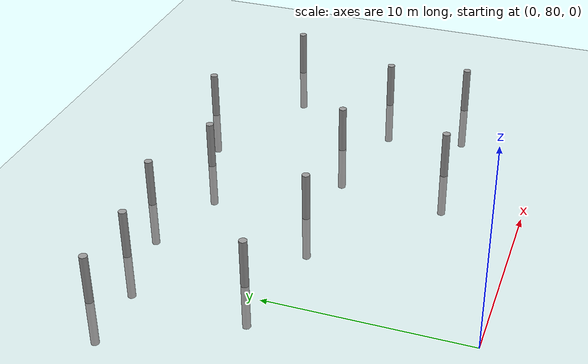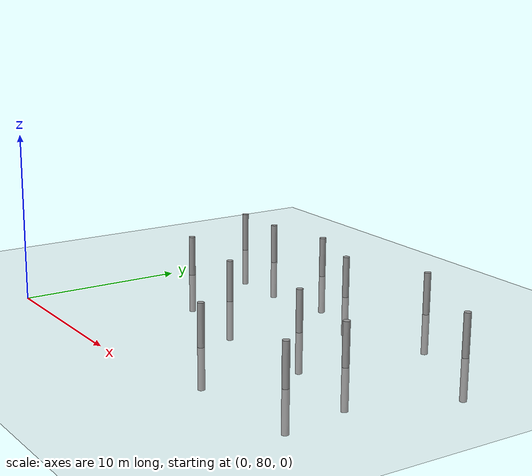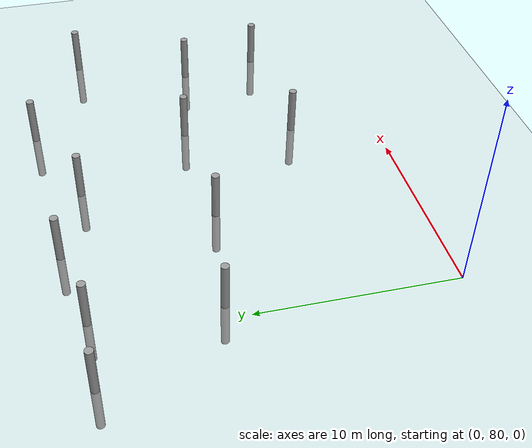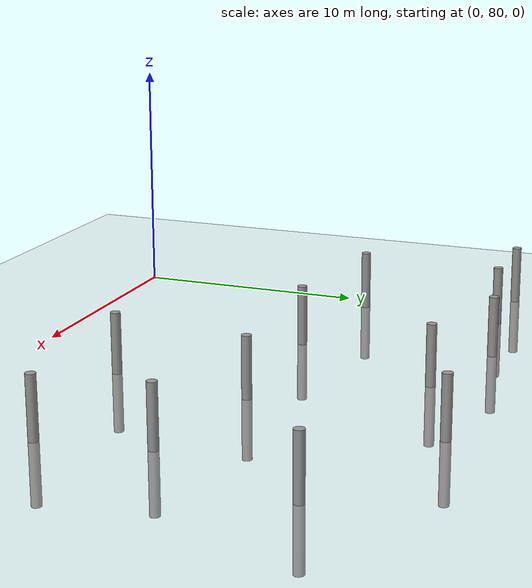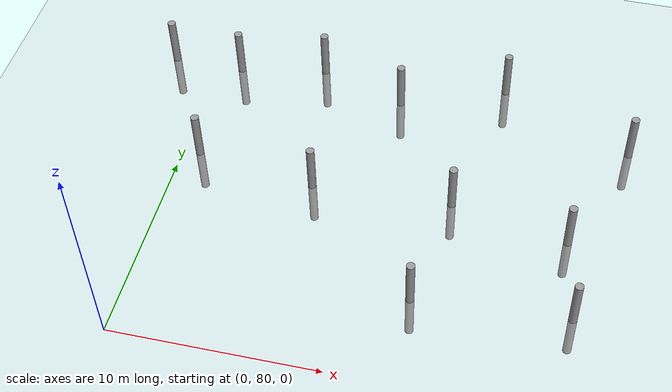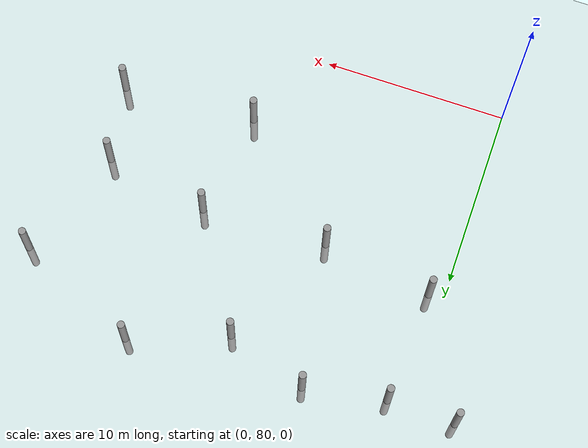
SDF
<sdf version="1.6">
 <world name="default">
  <model name="ground_plane">
   <static>1</static>
   <link name="link">
    <collision name="collision">
     <geometry><plane><normal>0 0 1</normal><size>100 100</size></plane></geometry>
     <surface><friction><ode><mu>100</mu><mu2>50</mu2></ode></friction></surface>
    </collision>
    <visual name="visual">
     <cast_shadows>0</cast_shadows>
     <geometry><plane><normal>0 0 1</normal><size>100 100</size></plane></geometry>
     <material>
      <script><uri>file://media/materials/scripts/gazebo.material</uri><name>Gazebo/Grey</name></script>
     </material>
    </visual>
   </link>
  </model>
  <model name="empty_pillars_0">
   <model name="empty_pillar_clone_30">
    <link name="link">
     <inertial>
      <mass>1</mass>
      <inertia><ixx>0.145833</ixx><ixy>0</ixy><ixz>0</ixz><iyy>0.145833</iyy><iyz>0</iyz><izz>0.125</izz></inertia>
     </inertial>
     <visual name="visual">
      <geometry><cylinder><radius>0.2</radius><length>5</length></cylinder></geometry>
      <material>
       <script><name>Gazebo/Grey</name><uri>file://media/materials/scripts/gazebo.material</uri></script>
       <shader type="vertex"><normal_map>__default__</normal_map></shader>
       <ambient>0.3 0.3 0.3 1</ambient>
       <diffuse>0.7 0.7 0.7 1</diffuse>
       <specular>0.01 0.01 0.01 1</specular>
       <emissive>0 0 0 1</emissive>
      </material>
     </visual>
     <collision name="collision">
      <geometry><cylinder><radius>0.05</radius><length>5</length></cylinder></geometry>
      <surface>
       <friction>
        <ode><mu>1</mu><mu2>1</mu2><fdir1>0 0 0</fdir1><slip1>0</slip1><slip2>0</slip2></ode>
        <torsional>
         <coefficient>1</coefficient>
         <patch_radius>0</patch_radius>
         <surface_radius>0</surface_radius>
         <use_patch_radius>1</use_patch_radius>
         <ode><slip>0</slip></ode>
        </torsional>
       </friction>
       <bounce><restitution_coefficient>0</restitution_coefficient><threshold>1e+06</threshold></bounce>
       <contact>
        <collide_without_contact>0</collide_without_contact>
        <collide_without_contact_bitmask>1</collide_without_contact_bitmask>
        <collide_bitmask>1</collide_bitmask>
        <ode>
         <soft_cfm>0</soft_cfm>
         <soft_erp>0.2</soft_erp>
         <kp>1e+13</kp>
         <kd>1</kd>
         <max_vel>0.01</max_vel>
         <min_depth>0</min_depth>
        </ode>
        <bullet>
         <split_impulse>1</split_impulse>
         <split_impulse_penetration_threshold>-0.01</split_impulse_penetration_threshold>
         <soft_cfm>0</soft_cfm>
         <soft_erp>0.2</soft_erp>
         <kp>1e+13</kp>
         <kd>1</kd>
        </bullet>
       </contact>
      </surface>
     </collision>
    </link>
    <static>0</static>
    <pose>23.752 19.2231 0 0 -0 0</pose>
   </model>
   <static>0</static>
   <pose>-26.2243 78.0173 0 0 -0 0</pose>
  </model>
  <model name="empty_pillars_1">
   <model name="empty_pillar_clone_16">
    <link name="link">
     <inertial>
      <mass>1</mass>
      <inertia><ixx>0.145833</ixx><ixy>0</ixy><ixz>0</ixz><iyy>0.145833</iyy><iyz>0</iyz><izz>0.125</izz></inertia>
     </inertial>
     <visual name="visual">
      <geometry><cylinder><radius>0.2</radius><length>5</length></cylinder></geometry>
      <material>
       <script><name>Gazebo/Grey</name><uri>file://media/materials/scripts/gazebo.material</uri></script>
       <shader type="vertex"><normal_map>__default__</normal_map></shader>
       <ambient>0.3 0.3 0.3 1</ambient>
       <diffuse>0.7 0.7 0.7 1</diffuse>
       <specular>0.01 0.01 0.01 1</specular>
       <emissive>0 0 0 1</emissive>
      </material>
     </visual>
     <collision name="collision">
      <geometry><cylinder><radius>0.05</radius><length>5</length></cylinder></geometry>
      <surface>
       <friction>
        <ode><mu>1</mu><mu2>1</mu2><fdir1>0 0 0</fdir1><slip1>0</slip1><slip2>0</slip2></ode>
        <torsional>
         <coefficient>1</coefficient>
         <patch_radius>0</patch_radius>
         <surface_radius>0</surface_radius>
         <use_patch_radius>1</use_patch_radius>
         <ode><slip>0</slip></ode>
        </torsional>
       </friction>
       <bounce><restitution_coefficient>0</restitution_coefficient><threshold>1e+06</threshold></bounce>
       <contact>
        <collide_without_contact>0</collide_without_contact>
        <collide_without_contact_bitmask>1</collide_without_contact_bitmask>
        <collide_bitmask>1</collide_bitmask>
        <ode>
         <soft_cfm>0</soft_cfm>
         <soft_erp>0.2</soft_erp>
         <kp>1e+13</kp>
         <kd>1</kd>
         <max_vel>0.01</max_vel>
         <min_depth>0</min_depth>
        </ode>
        <bullet>
         <split_impulse>1</split_impulse>
         <split_impulse_penetration_threshold>-0.01</split_impulse_penetration_threshold>
         <soft_cfm>0</soft_cfm>
         <soft_erp>0.2</soft_erp>
         <kp>1e+13</kp>
         <kd>1</kd>
        </bullet>
       </contact>
      </surface>
     </collision>
    </link>
    <static>0</static>
    <pose>-9.20789 13.0504 0 0 -0 0</pose>
   </model>
   <model name="empty_pillar_clone_17">
    <link name="link">
     <inertial>
      <mass>1</mass>
      <inertia><ixx>0.145833</ixx><ixy>0</ixy><ixz>0</ixz><iyy>0.145833</iyy><iyz>0</iyz><izz>0.125</izz></inertia>
     </inertial>
     <visual name="visual">
      <geometry><cylinder><radius>0.2</radius><length>5</length></cylinder></geometry>
      <material>
       <script><name>Gazebo/Grey</name><uri>file://media/materials/scripts/gazebo.material</uri></script>
       <shader type="vertex"><normal_map>__default__</normal_map></shader>
       <ambient>0.3 0.3 0.3 1</ambient>
       <diffuse>0.7 0.7 0.7 1</diffuse>
       <specular>0.01 0.01 0.01 1</specular>
       <emissive>0 0 0 1</emissive>
      </material>
     </visual>
     <collision name="collision">
      <geometry><cylinder><radius>0.05</radius><length>5</length></cylinder></geometry>
      <surface>
       <friction>
        <ode><mu>1</mu><mu2>1</mu2><fdir1>0 0 0</fdir1><slip1>0</slip1><slip2>0</slip2></ode>
        <torsional>
         <coefficient>1</coefficient>
         <patch_radius>0</patch_radius>
         <surface_radius>0</surface_radius>
         <use_patch_radius>1</use_patch_radius>
         <ode><slip>0</slip></ode>
        </torsional>
       </friction>
       <bounce><restitution_coefficient>0</restitution_coefficient><threshold>1e+06</threshold></bounce>
       <contact>
        <collide_without_contact>0</collide_without_contact>
        <collide_without_contact_bitmask>1</collide_without_contact_bitmask>
        <collide_bitmask>1</collide_bitmask>
        <ode>
         <soft_cfm>0</soft_cfm>
         <soft_erp>0.2</soft_erp>
         <kp>1e+13</kp>
         <kd>1</kd>
         <max_vel>0.01</max_vel>
         <min_depth>0</min_depth>
        </ode>
        <bullet>
         <split_impulse>1</split_impulse>
         <split_impulse_penetration_threshold>-0.01</split_impulse_penetration_threshold>
         <soft_cfm>0</soft_cfm>
         <soft_erp>0.2</soft_erp>
         <kp>1e+13</kp>
         <kd>1</kd>
        </bullet>
       </contact>
      </surface>
     </collision>
    </link>
    <static>0</static>
    <pose>-16.0449 12.755 0 0 -0 0</pose>
   </model>
   <model name="empty_pillar_clone_19">
    <link name="link">
     <inertial>
      <mass>1</mass>
      <inertia><ixx>0.145833</ixx><ixy>0</ixy><ixz>0</ixz><iyy>0.145833</iyy><iyz>0</iyz><izz>0.125</izz></inertia>
     </inertial>
     <visual name="visual">
      <geometry><cylinder><radius>0.2</radius><length>5</length></cylinder></geometry>
      <material>
       <script><name>Gazebo/Grey</name><uri>file://media/materials/scripts/gazebo.material</uri></script>
       <shader type="vertex"><normal_map>__default__</normal_map></shader>
       <ambient>0.3 0.3 0.3 1</ambient>
       <diffuse>0.7 0.7 0.7 1</diffuse>
       <specular>0.01 0.01 0.01 1</specular>
       <emissive>0 0 0 1</emissive>
      </material>
     </visual>
     <collision name="collision">
      <geometry><cylinder><radius>0.05</radius><length>5</length></cylinder></geometry>
      <surface>
       <friction>
        <ode><mu>1</mu><mu2>1</mu2><fdir1>0 0 0</fdir1><slip1>0</slip1><slip2>0</slip2></ode>
        <torsional>
         <coefficient>1</coefficient>
         <patch_radius>0</patch_radius>
         <surface_radius>0</surface_radius>
         <use_patch_radius>1</use_patch_radius>
         <ode><slip>0</slip></ode>
        </torsional>
       </friction>
       <bounce><restitution_coefficient>0</restitution_coefficient><threshold>1e+06</threshold></bounce>
       <contact>
        <collide_without_contact>0</collide_without_contact>
        <collide_without_contact_bitmask>1</collide_without_contact_bitmask>
        <collide_bitmask>1</collide_bitmask>
        <ode>
         <soft_cfm>0</soft_cfm>
         <soft_erp>0.2</soft_erp>
         <kp>1e+13</kp>
         <kd>1</kd>
         <max_vel>0.01</max_vel>
         <min_depth>0</min_depth>
        </ode>
        <bullet>
         <split_impulse>1</split_impulse>
         <split_impulse_penetration_threshold>-0.01</split_impulse_penetration_threshold>
         <soft_cfm>0</soft_cfm>
         <soft_erp>0.2</soft_erp>
         <kp>1e+13</kp>
         <kd>1</kd>
        </bullet>
       </contact>
      </surface>
     </collision>
    </link>
    <static>0</static>
    <pose>-10.0146 7.15966 0 0 -0 0</pose>
   </model>
   <model name="empty_pillar_clone_20">
    <link name="link">
     <inertial>
      <mass>1</mass>
      <inertia><ixx>0.145833</ixx><ixy>0</ixy><ixz>0</ixz><iyy>0.145833</iyy><iyz>0</iyz><izz>0.125</izz></inertia>
     </inertial>
     <visual name="visual">
      <geometry><cylinder><radius>0.2</radius><length>5</length></cylinder></geometry>
      <material>
       <script><name>Gazebo/Grey</name><uri>file://media/materials/scripts/gazebo.material</uri></script>
       <shader type="vertex"><normal_map>__default__</normal_map></shader>
       <ambient>0.3 0.3 0.3 1</ambient>
       <diffuse>0.7 0.7 0.7 1</diffuse>
       <specular>0.01 0.01 0.01 1</specular>
       <emissive>0 0 0 1</emissive>
      </material>
     </visual>
     <collision name="collision">
      <geometry><cylinder><radius>0.05</radius><length>5</length></cylinder></geometry>
      <surface>
       <friction>
        <ode><mu>1</mu><mu2>1</mu2><fdir1>0 0 0</fdir1><slip1>0</slip1><slip2>0</slip2></ode>
        <torsional>
         <coefficient>1</coefficient>
         <patch_radius>0</patch_radius>
         <surface_radius>0</surface_radius>
         <use_patch_radius>1</use_patch_radius>
         <ode><slip>0</slip></ode>
        </torsional>
       </friction>
       <bounce><restitution_coefficient>0</restitution_coefficient><threshold>1e+06</threshold></bounce>
       <contact>
        <collide_without_contact>0</collide_without_contact>
        <collide_without_contact_bitmask>1</collide_without_contact_bitmask>
        <collide_bitmask>1</collide_bitmask>
        <ode>
         <soft_cfm>0</soft_cfm>
         <soft_erp>0.2</soft_erp>
         <kp>1e+13</kp>
         <kd>1</kd>
         <max_vel>0.01</max_vel>
         <min_depth>0</min_depth>
        </ode>
        <bullet>
         <split_impulse>1</split_impulse>
         <split_impulse_penetration_threshold>-0.01</split_impulse_penetration_threshold>
         <soft_cfm>0</soft_cfm>
         <soft_erp>0.2</soft_erp>
         <kp>1e+13</kp>
         <kd>1</kd>
        </bullet>
       </contact>
      </surface>
     </collision>
    </link>
    <static>0</static>
    <pose>-13.0146 19.1597 0 0 -0 0</pose>
   </model>
   <model name="empty_pillar_clone_21">
    <link name="link">
     <inertial>
      <mass>1</mass>
      <inertia><ixx>0.145833</ixx><ixy>0</ixy><ixz>0</ixz><iyy>0.145833</iyy><iyz>0</iyz><izz>0.125</izz></inertia>
     </inertial>
     <visual name="visual">
      <geometry><cylinder><radius>0.2</radius><length>5</length></cylinder></geometry>
      <material>
       <script><name>Gazebo/Grey</name><uri>file://media/materials/scripts/gazebo.material</uri></script>
       <shader type="vertex"><normal_map>__default__</normal_map></shader>
       <ambient>0.3 0.3 0.3 1</ambient>
       <diffuse>0.7 0.7 0.7 1</diffuse>
       <specular>0.01 0.01 0.01 1</specular>
       <emissive>0 0 0 1</emissive>
      </material>
     </visual>
     <collision name="collision">
      <geometry><cylinder><radius>0.05</radius><length>5</length></cylinder></geometry>
      <surface>
       <friction>
        <ode><mu>1</mu><mu2>1</mu2><fdir1>0 0 0</fdir1><slip1>0</slip1><slip2>0</slip2></ode>
        <torsional>
         <coefficient>1</coefficient>
         <patch_radius>0</patch_radius>
         <surface_radius>0</surface_radius>
         <use_patch_radius>1</use_patch_radius>
         <ode><slip>0</slip></ode>
        </torsional>
       </friction>
       <bounce><restitution_coefficient>0</restitution_coefficient><threshold>1e+06</threshold></bounce>
       <contact>
        <collide_without_contact>0</collide_without_contact>
        <collide_without_contact_bitmask>1</collide_without_contact_bitmask>
        <collide_bitmask>1</collide_bitmask>
        <ode>
         <soft_cfm>0</soft_cfm>
         <soft_erp>0.2</soft_erp>
         <kp>1e+13</kp>
         <kd>1</kd>
         <max_vel>0.01</max_vel>
         <min_depth>0</min_depth>
        </ode>
        <bullet>
         <split_impulse>1</split_impulse>
         <split_impulse_penetration_threshold>-0.01</split_impulse_penetration_threshold>
         <soft_cfm>0</soft_cfm>
         <soft_erp>0.2</soft_erp>
         <kp>1e+13</kp>
         <kd>1</kd>
        </bullet>
       </contact>
      </surface>
     </collision>
    </link>
    <static>0</static>
    <pose>-21.7273 19.7662 0 0 -0 0</pose>
   </model>
   <model name="empty_pillar_clone_22">
    <link name="link">
     <inertial>
      <mass>1</mass>
      <inertia><ixx>0.145833</ixx><ixy>0</ixy><ixz>0</ixz><iyy>0.145833</iyy><iyz>0</iyz><izz>0.125</izz></inertia>
     </inertial>
     <visual name="visual">
      <geometry><cylinder><radius>0.2</radius><length>5</length></cylinder></geometry>
      <material>
       <script><name>Gazebo/Grey</name><uri>file://media/materials/scripts/gazebo.material</uri></script>
       <shader type="vertex"><normal_map>__default__</normal_map></shader>
       <ambient>0.3 0.3 0.3 1</ambient>
       <diffuse>0.7 0.7 0.7 1</diffuse>
       <specular>0.01 0.01 0.01 1</specular>
       <emissive>0 0 0 1</emissive>
      </material>
     </visual>
     <collision name="collision">
      <geometry><cylinder><radius>0.05</radius><length>5</length></cylinder></geometry>
      <surface>
       <friction>
        <ode><mu>1</mu><mu2>1</mu2><fdir1>0 0 0</fdir1><slip1>0</slip1><slip2>0</slip2></ode>
        <torsional>
         <coefficient>1</coefficient>
         <patch_radius>0</patch_radius>
         <surface_radius>0</surface_radius>
         <use_patch_radius>1</use_patch_radius>
         <ode><slip>0</slip></ode>
        </torsional>
       </friction>
       <bounce><restitution_coefficient>0</restitution_coefficient><threshold>1e+06</threshold></bounce>
       <contact>
        <collide_without_contact>0</collide_without_contact>
        <collide_without_contact_bitmask>1</collide_without_contact_bitmask>
        <collide_bitmask>1</collide_bitmask>
        <ode>
         <soft_cfm>0</soft_cfm>
         <soft_erp>0.2</soft_erp>
         <kp>1e+13</kp>
         <kd>1</kd>
         <max_vel>0.01</max_vel>
         <min_depth>0</min_depth>
        </ode>
        <bullet>
         <split_impulse>1</split_impulse>
         <split_impulse_penetration_threshold>-0.01</split_impulse_penetration_threshold>
         <soft_cfm>0</soft_cfm>
         <soft_erp>0.2</soft_erp>
         <kp>1e+13</kp>
         <kd>1</kd>
        </bullet>
       </contact>
      </surface>
     </collision>
    </link>
    <static>0</static>
    <pose>-17.3667 20.5782 0 0 -0 0</pose>
   </model>
   <model name="empty_pillar_clone_23">
    <link name="link">
     <inertial>
      <mass>1</mass>
      <inertia><ixx>0.145833</ixx><ixy>0</ixy><ixz>0</ixz><iyy>0.145833</iyy><iyz>0</iyz><izz>0.125</izz></inertia>
     </inertial>
     <visual name="visual">
      <geometry><cylinder><radius>0.2</radius><length>5</length></cylinder></geometry>
      <material>
       <script><name>Gazebo/Grey</name><uri>file://media/materials/scripts/gazebo.material</uri></script>
       <shader type="vertex"><normal_map>__default__</normal_map></shader>
       <ambient>0.3 0.3 0.3 1</ambient>
       <diffuse>0.7 0.7 0.7 1</diffuse>
       <specular>0.01 0.01 0.01 1</specular>
       <emissive>0 0 0 1</emissive>
      </material>
     </visual>
     <collision name="collision">
      <geometry><cylinder><radius>0.05</radius><length>5</length></cylinder></geometry>
      <surface>
       <friction>
        <ode><mu>1</mu><mu2>1</mu2><fdir1>0 0 0</fdir1><slip1>0</slip1><slip2>0</slip2></ode>
        <torsional>
         <coefficient>1</coefficient>
         <patch_radius>0</patch_radius>
         <surface_radius>0</surface_radius>
         <use_patch_radius>1</use_patch_radius>
         <ode><slip>0</slip></ode>
        </torsional>
       </friction>
       <bounce><restitution_coefficient>0</restitution_coefficient><threshold>1e+06</threshold></bounce>
       <contact>
        <collide_without_contact>0</collide_without_contact>
        <collide_without_contact_bitmask>1</collide_without_contact_bitmask>
        <collide_bitmask>1</collide_bitmask>
        <ode>
         <soft_cfm>0</soft_cfm>
         <soft_erp>0.2</soft_erp>
         <kp>1e+13</kp>
         <kd>1</kd>
         <max_vel>0.01</max_vel>
         <min_depth>0</min_depth>
        </ode>
        <bullet>
         <split_impulse>1</split_impulse>
         <split_impulse_penetration_threshold>-0.01</split_impulse_penetration_threshold>
         <soft_cfm>0</soft_cfm>
         <soft_erp>0.2</soft_erp>
         <kp>1e+13</kp>
         <kd>1</kd>
        </bullet>
       </contact>
      </surface>
     </collision>
    </link>
    <static>0</static>
    <pose>-1.21984 18.1273 0 0 -0 0</pose>
   </model>
   <model name="empty_pillar_clone_24">
    <link name="link">
     <inertial>
      <mass>1</mass>
      <inertia><ixx>0.145833</ixx><ixy>0</ixy><ixz>0</ixz><iyy>0.145833</iyy><iyz>0</iyz><izz>0.125</izz></inertia>
     </inertial>
     <visual name="visual">
      <geometry><cylinder><radius>0.2</radius><length>5</length></cylinder></geometry>
      <material>
       <script><name>Gazebo/Grey</name><uri>file://media/materials/scripts/gazebo.material</uri></script>
       <shader type="vertex"><normal_map>__default__</normal_map></shader>
       <ambient>0.3 0.3 0.3 1</ambient>
       <diffuse>0.7 0.7 0.7 1</diffuse>
       <specular>0.01 0.01 0.01 1</specular>
       <emissive>0 0 0 1</emissive>
      </material>
     </visual>
     <collision name="collision">
      <geometry><cylinder><radius>0.05</radius><length>5</length></cylinder></geometry>
      <surface>
       <friction>
        <ode><mu>1</mu><mu2>1</mu2><fdir1>0 0 0</fdir1><slip1>0</slip1><slip2>0</slip2></ode>
        <torsional>
         <coefficient>1</coefficient>
         <patch_radius>0</patch_radius>
         <surface_radius>0</surface_radius>
         <use_patch_radius>1</use_patch_radius>
         <ode><slip>0</slip></ode>
        </torsional>
       </friction>
       <bounce><restitution_coefficient>0</restitution_coefficient><threshold>1e+06</threshold></bounce>
       <contact>
        <collide_without_contact>0</collide_without_contact>
        <collide_without_contact_bitmask>1</collide_without_contact_bitmask>
        <collide_bitmask>1</collide_bitmask>
        <ode>
         <soft_cfm>0</soft_cfm>
         <soft_erp>0.2</soft_erp>
         <kp>1e+13</kp>
         <kd>1</kd>
         <max_vel>0.01</max_vel>
         <min_depth>0</min_depth>
        </ode>
        <bullet>
         <split_impulse>1</split_impulse>
         <split_impulse_penetration_threshold>-0.01</split_impulse_penetration_threshold>
         <soft_cfm>0</soft_cfm>
         <soft_erp>0.2</soft_erp>
         <kp>1e+13</kp>
         <kd>1</kd>
        </bullet>
       </contact>
      </surface>
     </collision>
    </link>
    <static>0</static>
    <pose>-3.46957 11.9413 0 0 -0 0</pose>
   </model>
   <model name="empty_pillar_clone_25">
    <link name="link">
     <inertial>
      <mass>1</mass>
      <inertia><ixx>0.145833</ixx><ixy>0</ixy><ixz>0</ixz><iyy>0.145833</iyy><iyz>0</iyz><izz>0.125</izz></inertia>
     </inertial>
     <visual name="visual">
      <geometry><cylinder><radius>0.2</radius><length>5</length></cylinder></geometry>
      <material>
       <script><name>Gazebo/Grey</name><uri>file://media/materials/scripts/gazebo.material</uri></script>
       <shader type="vertex"><normal_map>__default__</normal_map></shader>
       <ambient>0.3 0.3 0.3 1</ambient>
       <diffuse>0.7 0.7 0.7 1</diffuse>
       <specular>0.01 0.01 0.01 1</specular>
       <emissive>0 0 0 1</emissive>
      </material>
     </visual>
     <collision name="collision">
      <geometry><cylinder><radius>0.05</radius><length>5</length></cylinder></geometry>
      <surface>
       <friction>
        <ode><mu>1</mu><mu2>1</mu2><fdir1>0 0 0</fdir1><slip1>0</slip1><slip2>0</slip2></ode>
        <torsional>
         <coefficient>1</coefficient>
         <patch_radius>0</patch_radius>
         <surface_radius>0</surface_radius>
         <use_patch_radius>1</use_patch_radius>
         <ode><slip>0</slip></ode>
        </torsional>
       </friction>
       <bounce><restitution_coefficient>0</restitution_coefficient><threshold>1e+06</threshold></bounce>
       <contact>
        <collide_without_contact>0</collide_without_contact>
        <collide_without_contact_bitmask>1</collide_without_contact_bitmask>
        <collide_bitmask>1</collide_bitmask>
        <ode>
         <soft_cfm>0</soft_cfm>
         <soft_erp>0.2</soft_erp>
         <kp>1e+13</kp>
         <kd>1</kd>
         <max_vel>0.01</max_vel>
         <min_depth>0</min_depth>
        </ode>
        <bullet>
         <split_impulse>1</split_impulse>
         <split_impulse_penetration_threshold>-0.01</split_impulse_penetration_threshold>
         <soft_cfm>0</soft_cfm>
         <soft_erp>0.2</soft_erp>
         <kp>1e+13</kp>
         <kd>1</kd>
        </bullet>
       </contact>
      </surface>
     </collision>
    </link>
    <static>0</static>
    <pose>-7.86239 21.1314 0 0 -0 0</pose>
   </model>
   <model name="empty_pillar_clone_50">
    <link name="link">
     <inertial>
      <mass>1</mass>
      <inertia><ixx>0.145833</ixx><ixy>0</ixy><ixz>0</ixz><iyy>0.145833</iyy><iyz>0</iyz><izz>0.125</izz></inertia>
     </inertial>
     <visual name="visual">
      <geometry><cylinder><radius>0.2</radius><length>5</length></cylinder></geometry>
      <material>
       <script><name>Gazebo/Grey</name><uri>file://media/materials/scripts/gazebo.material</uri></script>
       <shader type="vertex"><normal_map>__default__</normal_map></shader>
       <ambient>0.3 0.3 0.3 1</ambient>
       <diffuse>0.7 0.7 0.7 1</diffuse>
       <specular>0.01 0.01 0.01 1</specular>
       <emissive>0 0 0 1</emissive>
      </material>
     </visual>
     <collision name="collision">
      <geometry><cylinder><radius>0.05</radius><length>5</length></cylinder></geometry>
      <surface>
       <friction>
        <ode><mu>1</mu><mu2>1</mu2><fdir1>0 0 0</fdir1><slip1>0</slip1><slip2>0</slip2></ode>
        <torsional>
         <coefficient>1</coefficient>
         <patch_radius>0</patch_radius>
         <surface_radius>0</surface_radius>
         <use_patch_radius>1</use_patch_radius>
         <ode><slip>0</slip></ode>
        </torsional>
       </friction>
       <bounce><restitution_coefficient>0</restitution_coefficient><threshold>1e+06</threshold></bounce>
       <contact>
        <collide_without_contact>0</collide_without_contact>
        <collide_without_contact_bitmask>1</collide_without_contact_bitmask>
        <collide_bitmask>1</collide_bitmask>
        <ode>
         <soft_cfm>0</soft_cfm>
         <soft_erp>0.2</soft_erp>
         <kp>1e+13</kp>
         <kd>1</kd>
         <max_vel>0.01</max_vel>
         <min_depth>0</min_depth>
        </ode>
        <bullet>
         <split_impulse>1</split_impulse>
         <split_impulse_penetration_threshold>-0.01</split_impulse_penetration_threshold>
         <soft_cfm>0</soft_cfm>
         <soft_erp>0.2</soft_erp>
         <kp>1e+13</kp>
         <kd>1</kd>
        </bullet>
       </contact>
      </surface>
     </collision>
    </link>
    <static>0</static>
    <pose>-22.0498 13.6251 0 0 -0 0</pose>
   </model>
   <model name="empty_pillar_clone_56">
    <link name="link">
     <inertial>
      <mass>1</mass>
      <inertia><ixx>0.145833</ixx><ixy>0</ixy><ixz>0</ixz><iyy>0.145833</iyy><iyz>0</iyz><izz>0.125</izz></inertia>
     </inertial>
     <visual name="visual">
      <geometry><cylinder><radius>0.2</radius><length>5</length></cylinder></geometry>
      <material>
       <script><name>Gazebo/Grey</name><uri>file://media/materials/scripts/gazebo.material</uri></script>
       <shader type="vertex"><normal_map>__default__</normal_map></shader>
       <ambient>0.3 0.3 0.3 1</ambient>
       <diffuse>0.7 0.7 0.7 1</diffuse>
       <specular>0.01 0.01 0.01 1</specular>
       <emissive>0 0 0 1</emissive>
      </material>
     </visual>
     <collision name="collision">
      <geometry><cylinder><radius>0.05</radius><length>5</length></cylinder></geometry>
      <surface>
       <friction>
        <ode><mu>1</mu><mu2>1</mu2><fdir1>0 0 0</fdir1><slip1>0</slip1><slip2>0</slip2></ode>
        <torsional>
         <coefficient>1</coefficient>
         <patch_radius>0</patch_radius>
         <surface_radius>0</surface_radius>
         <use_patch_radius>1</use_patch_radius>
         <ode><slip>0</slip></ode>
        </torsional>
       </friction>
       <bounce><restitution_coefficient>0</restitution_coefficient><threshold>1e+06</threshold></bounce>
       <contact>
        <collide_without_contact>0</collide_without_contact>
        <collide_without_contact_bitmask>1</collide_without_contact_bitmask>
        <collide_bitmask>1</collide_bitmask>
        <ode>
         <soft_cfm>0</soft_cfm>
         <soft_erp>0.2</soft_erp>
         <kp>1e+13</kp>
         <kd>1</kd>
         <max_vel>0.01</max_vel>
         <min_depth>0</min_depth>
        </ode>
        <bullet>
         <split_impulse>1</split_impulse>
         <split_impulse_penetration_threshold>-0.01</split_impulse_penetration_threshold>
         <soft_cfm>0</soft_cfm>
         <soft_erp>0.2</soft_erp>
         <kp>1e+13</kp>
         <kd>1</kd>
        </bullet>
       </contact>
      </surface>
     </collision>
    </link>
    <static>0</static>
    <pose>-2.69782 7.67053 0 0 -0 0</pose>
   </model>
   <static>0</static>
   <pose>22.8728 77.4317 0 0 -0 0</pose>
  </model>
 </world>
</sdf>
